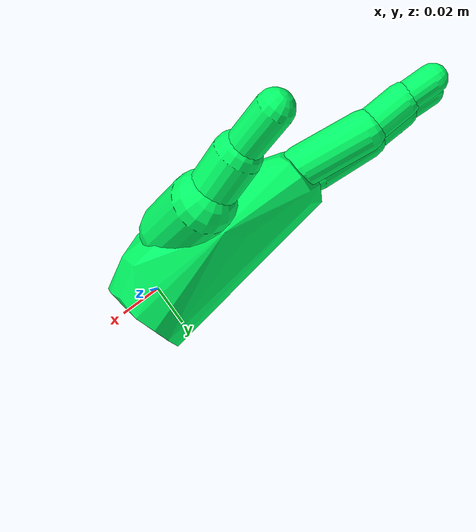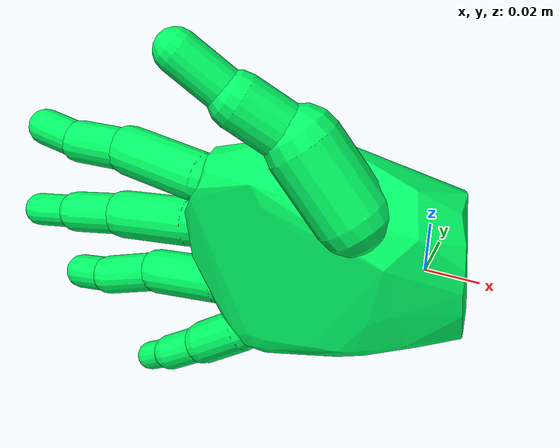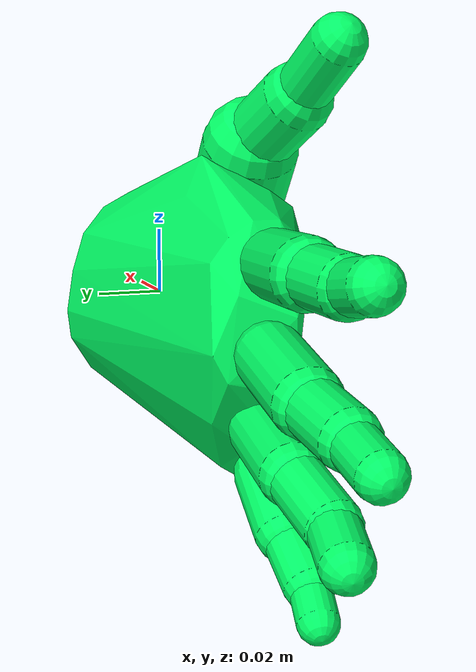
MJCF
<mujoco model="mano_hand">
  <compiler autolimits="true" angle="radian"/>
  <default>
    <geom solimp="0.5 0.95 0.001" solref="0.04 1"/>
  </default>
  <asset>
    <mesh name="mano_bone_0" file="meshes/mano_bone_0.obj"/>
    <mesh name="mano_bone_1" file="meshes/mano_bone_1.obj"/>
    <mesh name="mano_bone_2" file="meshes/mano_bone_2.obj"/>
    <mesh name="mano_bone_3" file="meshes/mano_bone_3.obj"/>
    <mesh name="mano_bone_4" file="meshes/mano_bone_4.obj"/>
    <mesh name="mano_bone_5" file="meshes/mano_bone_5.obj"/>
    <mesh name="mano_bone_6" file="meshes/mano_bone_6.obj"/>
    <mesh name="mano_bone_7" file="meshes/mano_bone_7.obj"/>
    <mesh name="mano_bone_8" file="meshes/mano_bone_8.obj"/>
    <mesh name="mano_bone_9" file="meshes/mano_bone_9.obj"/>
    <mesh name="mano_bone_10" file="meshes/mano_bone_10.obj"/>
    <mesh name="mano_bone_11" file="meshes/mano_bone_11.obj"/>
    <mesh name="mano_bone_12" file="meshes/mano_bone_12.obj"/>
    <mesh name="mano_bone_13" file="meshes/mano_bone_13.obj"/>
    <mesh name="mano_bone_14" file="meshes/mano_bone_14.obj"/>
    <mesh name="mano_bone_15" file="meshes/mano_bone_15.obj"/>
  </asset>
  <worldbody>
    <body name="mano_body_0" pos="0 0 0">
      <joint name="wrist_tx" type="slide" axis="1 0 0" pos="0 0 0" limited="false" damping="5.0"/>
      <joint name="wrist_ty" type="slide" axis="0 1 0" pos="0 0 0" limited="false" damping="5.0"/>
      <joint name="wrist_tz" type="slide" axis="0 0 1" pos="0 0 0" limited="false" damping="5.0"/>
      <joint name="wrist_rot" type="ball" pos="0 0 0" limited="false" damping="5.0" armature="0.01"/>
      <inertial pos="-0.0342879 -0.00198336 4.85983e-05" mass="0.299919" fullinertia="1.591562e-04 3.407687e-04 2.567090e-04 -1.321680e-05 1.106408e-06 -1.201124e-06"/>
      <geom type="mesh" mesh="mano_bone_0" pos="-0.038273 -0.00476216 -0.00502742" rgba="0.000 1.000 0.400 1" priority="1" solimp="0.005 0.9 0.025 0.5 2"/>
    <body name="mano_body_1" pos="-0.106127 -0.00260982 0.0220379">
      <joint name="mano_joint_1" type="ball" pos="0.0180294 -0.00259053 -0.00135195" limited="false" damping="0.01" armature="0.001"/>
      <inertial pos="-0.000381125 0.000782439 0.000133899" mass="0.0101336" fullinertia="5.081425e-07 9.146209e-07 9.503767e-07 2.675256e-08 -3.639895e-08 1.879577e-10"/>
      <geom type="capsule" fromto="0.0180294 -0.00259053 -0.00135195 -0.0146495 0.00141882 0.000865115" size="0.00998191" rgba="0.000 1.000 0.400 1"/>
    <body name="mano_body_2" pos="-0.0267312 0.000968596 0.00141717">
      <joint name="mano_joint_2" type="ball" pos="0.0120817 0.000450225 -0.000552056" limited="false" damping="0.01" armature="0.001"/>
      <inertial pos="0.000868576 0.000283084 -0.000528819" mass="0.00491882" fullinertia="1.764291e-07 2.558113e-07 2.340736e-07 -1.019004e-08 -1.245811e-08 4.380210e-09"/>
      <geom type="capsule" fromto="0.0120817 0.000450225 -0.000552056 -0.0100743 -0.000848197 -0.000666166" size="0.00844614" rgba="0.000 1.000 0.400 1"/>
    <body name="mano_body_3" pos="-0.0251082 -0.00115656 -0.00129385">
      <joint name="mano_joint_3" type="ball" pos="0.0150339 0.000308361 0.000627689" limited="false" damping="0.01" armature="0.001"/>
      <inertial pos="0.00390114 -0.000193501 0.000484587" mass="0.00354151" fullinertia="8.538902e-08 1.798792e-07 1.637723e-07 1.802936e-09 -8.078042e-09 -4.911206e-09"/>
      <geom type="capsule" fromto="0.0150339 0.000308361 0.000627689 -0.00107158 0.000805432 0.00343111" size="0.00726824" rgba="0.000 1.000 0.400 1"/>
    </body>
    </body>
    </body>
    <body name="mano_body_4" pos="-0.111512 9.16398e-05 -0.00659565">
      <joint name="mano_joint_4" type="ball" pos="0.0168517 -0.0015706 0.00323812" limited="false" damping="0.01" armature="0.001"/>
      <inertial pos="0.00281076 0.000799052 0.000262581" mass="0.0119118" fullinertia="6.510632e-07 1.374072e-06 1.287734e-06 5.898766e-10 -1.629428e-07 -1.084260e-08"/>
      <geom type="capsule" fromto="0.0168517 -0.0015706 0.00323812 -0.014331 0.000290725 -0.00235639" size="0.00990952" rgba="0.000 1.000 0.400 1"/>
    <body name="mano_body_5" pos="-0.0292002 -0.000404891 -0.00501037">
      <joint name="mano_joint_5" type="ball" pos="0.0148693 0.000695616 0.00265398" limited="false" damping="0.01" armature="0.001"/>
      <inertial pos="0.00178563 0.000485962 0.000438668" mass="0.00473037" fullinertia="1.710687e-07 2.320510e-07 2.187525e-07 -1.685900e-08 -9.777441e-09 -5.825542e-09"/>
      <geom type="capsule" fromto="0.0148693 0.000695616 0.00265398 -0.00803539 -0.000556488 -0.00129054" size="0.00846899" rgba="0.000 1.000 0.400 1"/>
    <body name="mano_body_6" pos="-0.0242487 6.58645e-05 -0.00433939">
      <joint name="mano_joint_6" type="ball" pos="0.0162133 -0.000622352 0.00304886" limited="false" damping="0.01" armature="0.001"/>
      <inertial pos="0.00280131 -0.000754524 0.000967171" mass="0.003451" fullinertia="9.113935e-08 1.568828e-07 1.430553e-07 9.332245e-09 -1.436739e-08 -1.264509e-09"/>
      <geom type="capsule" fromto="0.0162133 -0.000622352 0.00304886 -0.00297678 -0.000153645 -0.000898466" size="0.00686763" rgba="0.000 1.000 0.400 1"/>
    </body>
    </body>
    </body>
    <body name="mano_body_7" pos="-0.0758905 -0.00964119 -0.0507756">
      <joint name="mano_joint_7" type="ball" pos="0.00710351 -0.000299137 0.00756626" limited="false" damping="0.01" armature="0.001"/>
      <inertial pos="-0.000194824 0.000910535 0.000489224" mass="0.00491568" fullinertia="1.923988e-07 2.567855e-07 2.220643e-07 -9.159267e-10 -3.382286e-08 -1.992428e-09"/>
      <geom type="capsule" fromto="0.00710351 -0.000299137 0.00756626 -0.0099109 -0.000237312 -0.00493253" size="0.00896584" rgba="0.000 1.000 0.400 1"/>
    <body name="mano_body_8" pos="-0.018654 0.000400318 -0.0109985">
      <joint name="mano_joint_8" type="ball" pos="0.00874306 -0.00063763 0.00606599" limited="false" damping="0.01" armature="0.001"/>
      <inertial pos="0.000882597 0.000444905 -0.000118611" mass="0.00318219" fullinertia="9.269115e-08 1.240169e-07 1.100035e-07 -2.090895e-09 -1.706223e-08 -5.022782e-09"/>
      <geom type="capsule" fromto="0.00874306 -0.00063763 0.00606599 -0.00712384 -0.00132878 -0.0042659" size="0.0074884" rgba="0.000 1.000 0.400 1"/>
    <body name="mano_body_9" pos="-0.0181273 -0.00211672 -0.0104037">
      <joint name="mano_joint_9" type="ball" pos="0.0110035 0.000787935 0.0061378" limited="false" damping="0.01" armature="0.001"/>
      <inertial pos="0.002193 -0.000169899 0.00111001" mass="0.00179158" fullinertia="3.386582e-08 5.076396e-08 4.330610e-08 2.954781e-11 -7.222490e-09 -5.550407e-10"/>
      <geom type="capsule" fromto="0.0110035 0.000787935 0.0061378 0.000149343 0.00253418 -0.000878232" size="0.00606342" rgba="0.000 1.000 0.400 1"/>
    </body>
    </body>
    </body>
    <body name="mano_body_10" pos="-0.0935224 -0.00172689 -0.0271462">
      <joint name="mano_joint_10" type="ball" pos="0.0117869 -0.00223053 0.000472965" limited="false" damping="0.01" armature="0.001"/>
      <inertial pos="-0.000506754 0.000247741 -0.000226002" mass="0.0086558" fullinertia="4.262085e-07 6.631791e-07 6.630360e-07 -6.371084e-09 -5.570477e-08 -1.088552e-08"/>
      <geom type="capsule" fromto="0.0117869 -0.00223053 0.000472965 -0.0165274 -0.000163521 -0.00462557" size="0.0092665" rgba="0.000 1.000 0.400 1"/>
    <body name="mano_body_11" pos="-0.0283013 -0.000941006 -0.00855144">
      <joint name="mano_joint_11" type="ball" pos="0.0117739 0.000777486 0.00392587" limited="false" damping="0.01" armature="0.001"/>
      <inertial pos="0.000572853 0.000387494 -0.000276782" mass="0.00575434" fullinertia="2.047689e-07 3.970291e-07 3.746926e-07 -1.803558e-08 -5.569379e-08 -7.278357e-09"/>
      <geom type="capsule" fromto="0.0117739 0.000777486 0.00392587 -0.0117466 -0.000910626 -0.00370795" size="0.00810379" rgba="0.000 1.000 0.400 1"/>
    <body name="mano_body_12" pos="-0.0266197 -0.000720145 -0.00823215">
      <joint name="mano_joint_12" type="ball" pos="0.0148731 -0.000190481 0.0045242" limited="false" damping="0.01" armature="0.001"/>
      <inertial pos="0.00287895 -0.000275808 0.00100509" mass="0.00329628" fullinertia="7.963146e-08 1.592949e-07 1.436766e-07 4.004832e-09 -2.225436e-08 -1.406082e-09"/>
      <geom type="capsule" fromto="0.0148731 -0.000190481 0.0045242 -0.0011451 0.00298337 -0.000359476" size="0.00732665" rgba="0.000 1.000 0.400 1"/>
    </body>
    </body>
    </body>
    <body name="mano_body_13" pos="-0.0309169 -0.0203859 0.039459">
      <joint name="mano_joint_13" type="ball" pos="0.00682717 0.0048636 -0.0136462" limited="false" damping="0.01" armature="0.001"/>
      <inertial pos="0.00146203 0.00228701 -0.000670343" mass="0.0158913" fullinertia="1.468915e-06 2.067826e-06 2.124039e-06 -1.664123e-07 1.799434e-07 -3.976351e-07"/>
      <geom type="capsule" fromto="0.00682717 0.0048636 -0.0136462 -0.0128061 0.00575489 0.0100534" size="0.0144534" rgba="0.000 1.000 0.400 1"/>
    <body name="mano_body_14" pos="-0.0249217 0.0029706 0.0191192">
      <joint name="mano_joint_14" type="ball" pos="0.0121157 0.00278429 -0.00906586" limited="false" damping="0.01" armature="0.001"/>
      <inertial pos="0.00135988 0.000439172 -0.000584619" mass="0.00935246" fullinertia="5.145178e-07 7.299392e-07 7.528672e-07 -3.641255e-08 5.802149e-08 2.865063e-08"/>
      <geom type="capsule" fromto="0.0121157 0.00278429 -0.00906586 -0.0101021 -0.00264868 0.00545827" size="0.0106594" rgba="0.000 1.000 0.400 1"/>
    <body name="mano_body_15" pos="-0.0269612 -0.00573475 0.0181354">
      <joint name="mano_joint_15" type="ball" pos="0.0168591 0.00308607 -0.0126771" limited="false" damping="0.01" armature="0.001"/>
      <inertial pos="0.00506165 0.00081571 -0.00348753" mass="0.00855456" fullinertia="5.152928e-07 7.600984e-07 6.396739e-07 -4.620030e-08 1.969648e-07 5.522828e-08"/>
      <geom type="capsule" fromto="0.0168591 0.00308607 -0.0126771 -0.00420547 -0.000295555 0.00317353" size="0.0081173" rgba="0.000 1.000 0.400 1"/>
    </body>
    </body>
    </body>
    </body>
  </worldbody>
  <actuator>
    <position name="wrist_motor_tx" joint="wrist_tx" kp="300.0" dampratio="1.0"/>
    <position name="wrist_motor_ty" joint="wrist_ty" kp="300.0" dampratio="1.0"/>
    <position name="wrist_motor_tz" joint="wrist_tz" kp="300.0" dampratio="1.0"/>
    <position name="wrist_motor_rx" joint="wrist_rot" gear="1 0 0" kp="50.0" dampratio="1.5"/>
    <position name="wrist_motor_ry" joint="wrist_rot" gear="0 1 0" kp="50.0" dampratio="1.5"/>
    <position name="wrist_motor_rz" joint="wrist_rot" gear="0 0 1" kp="50.0" dampratio="1.5"/>
    <position name="mano_motor_1_x" joint="mano_joint_1" gear="1 0 0" kp="30.0" dampratio="1.0"/>
    <position name="mano_motor_1_y" joint="mano_joint_1" gear="0 1 0" kp="30.0" dampratio="1.0"/>
    <position name="mano_motor_1_z" joint="mano_joint_1" gear="0 0 1" kp="30.0" dampratio="1.0"/>
    <position name="mano_motor_2_x" joint="mano_joint_2" gear="1 0 0" kp="30.0" dampratio="1.0"/>
    <position name="mano_motor_2_y" joint="mano_joint_2" gear="0 1 0" kp="30.0" dampratio="1.0"/>
    <position name="mano_motor_2_z" joint="mano_joint_2" gear="0 0 1" kp="30.0" dampratio="1.0"/>
    <position name="mano_motor_3_x" joint="mano_joint_3" gear="1 0 0" kp="30.0" dampratio="1.0"/>
    <position name="mano_motor_3_y" joint="mano_joint_3" gear="0 1 0" kp="30.0" dampratio="1.0"/>
    <position name="mano_motor_3_z" joint="mano_joint_3" gear="0 0 1" kp="30.0" dampratio="1.0"/>
    <position name="mano_motor_4_x" joint="mano_joint_4" gear="1 0 0" kp="30.0" dampratio="1.0"/>
    <position name="mano_motor_4_y" joint="mano_joint_4" gear="0 1 0" kp="30.0" dampratio="1.0"/>
    <position name="mano_motor_4_z" joint="mano_joint_4" gear="0 0 1" kp="30.0" dampratio="1.0"/>
    <position name="mano_motor_5_x" joint="mano_joint_5" gear="1 0 0" kp="30.0" dampratio="1.0"/>
    <position name="mano_motor_5_y" joint="mano_joint_5" gear="0 1 0" kp="30.0" dampratio="1.0"/>
    <position name="mano_motor_5_z" joint="mano_joint_5" gear="0 0 1" kp="30.0" dampratio="1.0"/>
    <position name="mano_motor_6_x" joint="mano_joint_6" gear="1 0 0" kp="30.0" dampratio="1.0"/>
    <position name="mano_motor_6_y" joint="mano_joint_6" gear="0 1 0" kp="30.0" dampratio="1.0"/>
    <position name="mano_motor_6_z" joint="mano_joint_6" gear="0 0 1" kp="30.0" dampratio="1.0"/>
    <position name="mano_motor_7_x" joint="mano_joint_7" gear="1 0 0" kp="30.0" dampratio="1.0"/>
    <position name="mano_motor_7_y" joint="mano_joint_7" gear="0 1 0" kp="30.0" dampratio="1.0"/>
    <position name="mano_motor_7_z" joint="mano_joint_7" gear="0 0 1" kp="30.0" dampratio="1.0"/>
    <position name="mano_motor_8_x" joint="mano_joint_8" gear="1 0 0" kp="30.0" dampratio="1.0"/>
    <position name="mano_motor_8_y" joint="mano_joint_8" gear="0 1 0" kp="30.0" dampratio="1.0"/>
    <position name="mano_motor_8_z" joint="mano_joint_8" gear="0 0 1" kp="30.0" dampratio="1.0"/>
    <position name="mano_motor_9_x" joint="mano_joint_9" gear="1 0 0" kp="30.0" dampratio="1.0"/>
    <position name="mano_motor_9_y" joint="mano_joint_9" gear="0 1 0" kp="30.0" dampratio="1.0"/>
    <position name="mano_motor_9_z" joint="mano_joint_9" gear="0 0 1" kp="30.0" dampratio="1.0"/>
    <position name="mano_motor_10_x" joint="mano_joint_10" gear="1 0 0" kp="30.0" dampratio="1.0"/>
    <position name="mano_motor_10_y" joint="mano_joint_10" gear="0 1 0" kp="30.0" dampratio="1.0"/>
    <position name="mano_motor_10_z" joint="mano_joint_10" gear="0 0 1" kp="30.0" dampratio="1.0"/>
    <position name="mano_motor_11_x" joint="mano_joint_11" gear="1 0 0" kp="30.0" dampratio="1.0"/>
    <position name="mano_motor_11_y" joint="mano_joint_11" gear="0 1 0" kp="30.0" dampratio="1.0"/>
    <position name="mano_motor_11_z" joint="mano_joint_11" gear="0 0 1" kp="30.0" dampratio="1.0"/>
    <position name="mano_motor_12_x" joint="mano_joint_12" gear="1 0 0" kp="30.0" dampratio="1.0"/>
    <position name="mano_motor_12_y" joint="mano_joint_12" gear="0 1 0" kp="30.0" dampratio="1.0"/>
    <position name="mano_motor_12_z" joint="mano_joint_12" gear="0 0 1" kp="30.0" dampratio="1.0"/>
    <position name="mano_motor_13_x" joint="mano_joint_13" gear="1 0 0" kp="30.0" dampratio="1.0"/>
    <position name="mano_motor_13_y" joint="mano_joint_13" gear="0 1 0" kp="30.0" dampratio="1.0"/>
    <position name="mano_motor_13_z" joint="mano_joint_13" gear="0 0 1" kp="30.0" dampratio="1.0"/>
    <position name="mano_motor_14_x" joint="mano_joint_14" gear="1 0 0" kp="30.0" dampratio="1.0"/>
    <position name="mano_motor_14_y" joint="mano_joint_14" gear="0 1 0" kp="30.0" dampratio="1.0"/>
    <position name="mano_motor_14_z" joint="mano_joint_14" gear="0 0 1" kp="30.0" dampratio="1.0"/>
    <position name="mano_motor_15_x" joint="mano_joint_15" gear="1 0 0" kp="30.0" dampratio="1.0"/>
    <position name="mano_motor_15_y" joint="mano_joint_15" gear="0 1 0" kp="30.0" dampratio="1.0"/>
    <position name="mano_motor_15_z" joint="mano_joint_15" gear="0 0 1" kp="30.0" dampratio="1.0"/>
  </actuator>
</mujoco>
